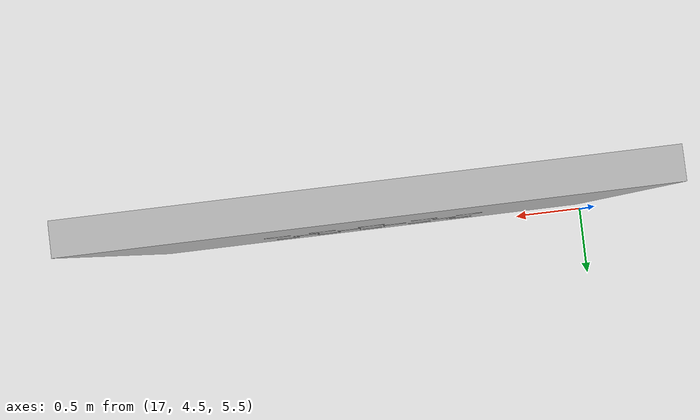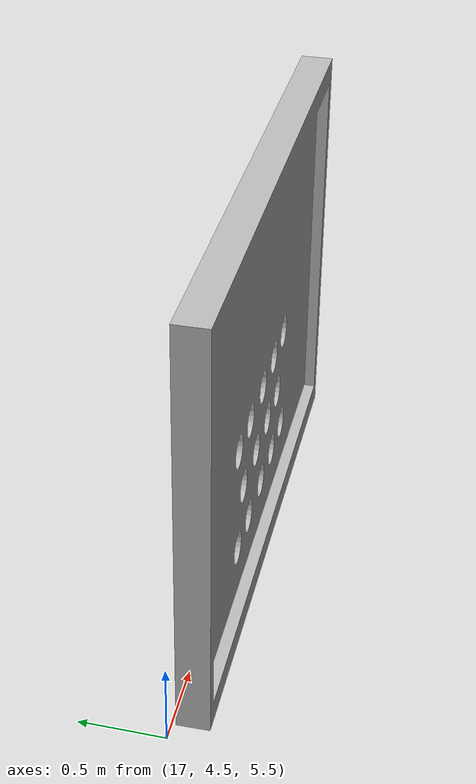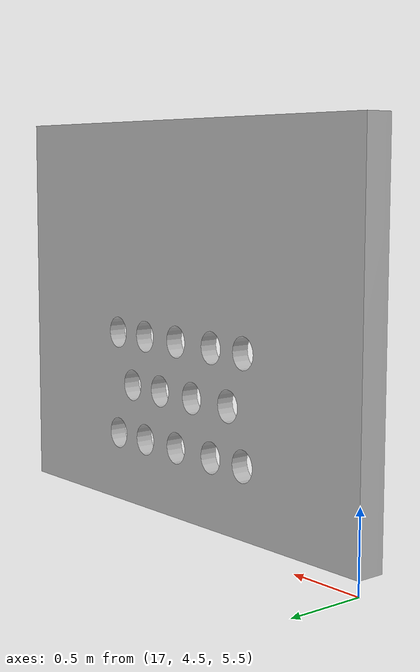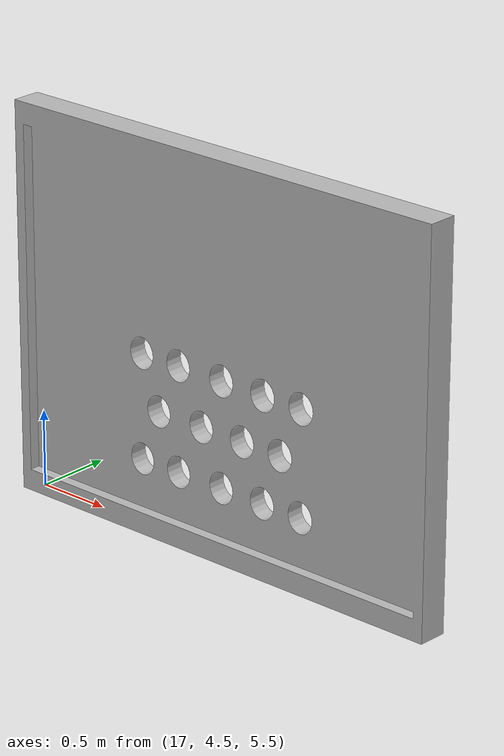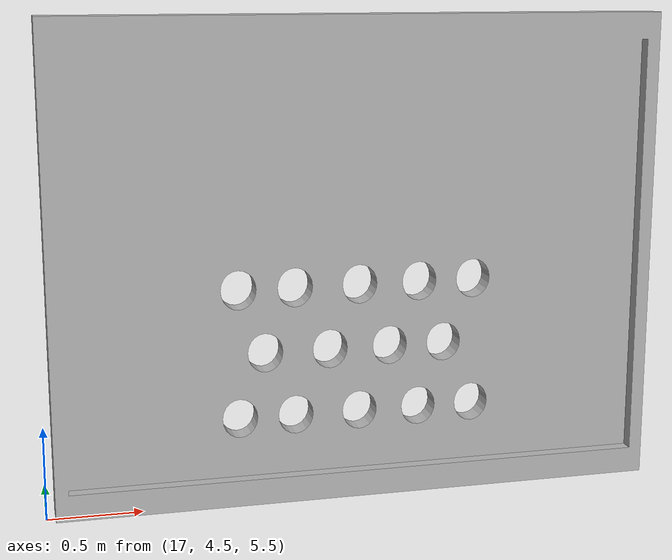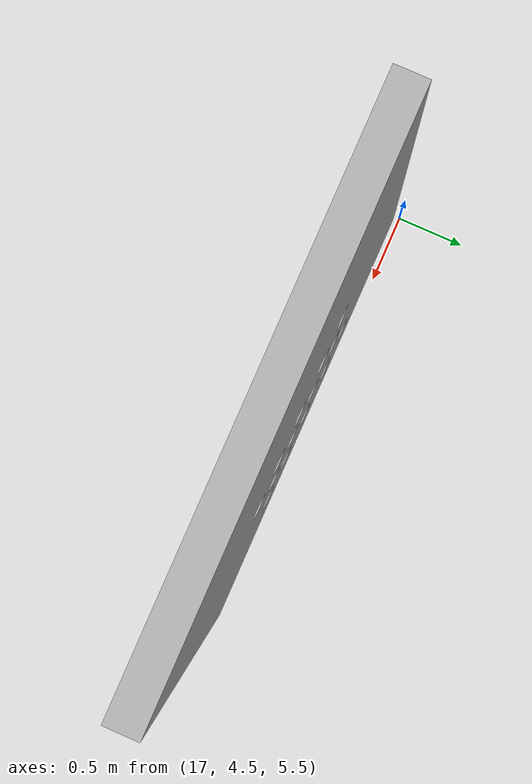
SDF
<?xml version="1.0" ?>
<sdf version="1.6">
  <model name="hover_chair">
    <static>false</static>
    <link name="base_link">
      <visual name="visual">
        <geometry>
          <mesh>
            <uri>model://hoverchair_model/meshes/back_cover.stl</uri>
          </mesh>
        </geometry>
      </visual>
      <collision name="collision">
        <geometry>
          <mesh>
            <uri>model://hoverchair_model/meshes/back_cover.stl</uri>
          </mesh>
        </geometry>
      </collision>
    </link>
  </model>
</sdf>
